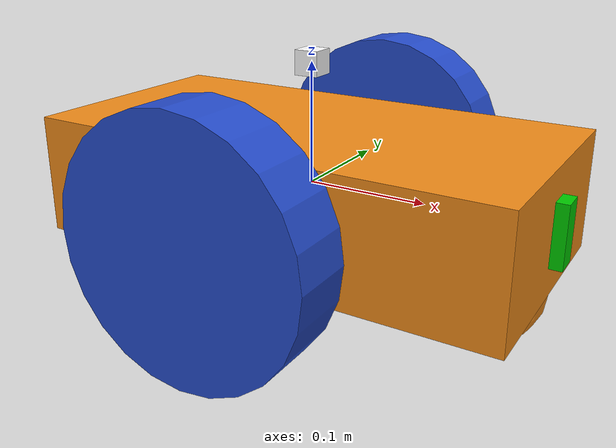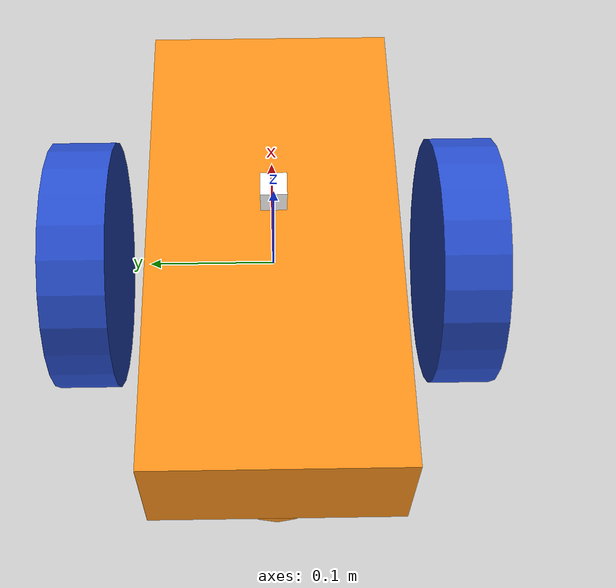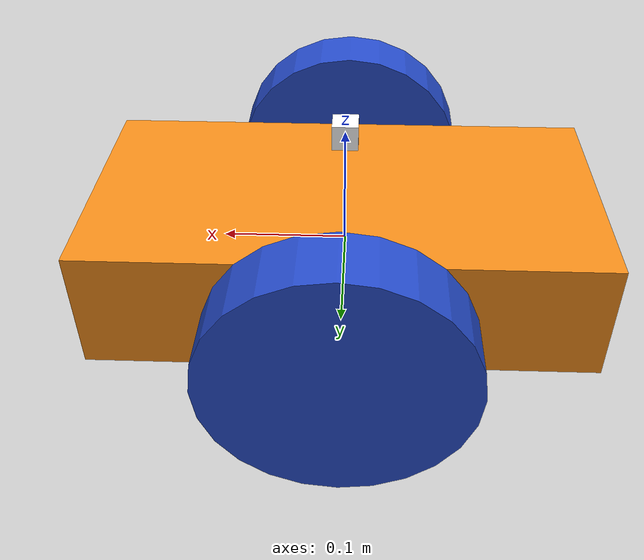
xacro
<?xml version='1.0'?>
<robot name="myrobot" xmlns:xacro="http://www.ros.org/wiki/xacro">

<xacro:property name="cameraSize" value="0.05"/>
<xacro:property name="cameraMass" value="0.1"/>
<xacro:include filename="$(find pbot_des)/urdf/mybot.gazebo" />
<xacro:include filename="$(find pbot_des)/urdf/materials.xacro" />
<xacro:include filename="$(find pbot_des)/urdf/macros.xacro" />

    <link name='chassis'>
        <pose>0 0 0.1 0 0 0</pose>
        <inertial>
            <mass value="15.0"/>
            <origin xyz="0.0 0 0.1" rpy=" 0 0 0"/>
            <inertia ixx="0.1" ixy="0" ixz="0" iyy="0.1" iyz="0" izz="0.1" />
        </inertial>
        <collision name='collision'>
            <geometry>
                <box size=".4 .2 .1"/>
            </geometry>
        </collision>
        <visual name='chassis_visual'>
            <origin xyz="0 0 0" rpy=" 0 0 0"/>
            <geometry>
                <box size=".4 .2 .1"/>
            </geometry>
        </visual>
        <collision name='caster_collision'>
            <origin xyz="-0.15 0 -0.05" rpy=" 0 0 0"/>
            <geometry>
                <sphere radius="0.05"/>
            </geometry>
            <surface>
            <friction>
            <ode>
                <mu>0</mu>
                <mu2>0</mu2>
                <slip1>1.0</slip1>
                <slip2>1.0</slip2>
            </ode>
            </friction>
            </surface>
        </collision>
        <visual name='caster_visual'>
        <origin xyz="-0.15 0 -0.05" rpy=" 0 0 0"/>
            <geometry>
                <sphere radius="0.05"/>
            </geometry>
        </visual>
        <collision name='caster_front_collision'>
        <origin xyz="0.15 0 -0.05" rpy=" 0 0 0"/>
            <geometry>
                <sphere radius="0.05"/>
            </geometry>
            <surface>
            <friction>
            <ode>
                <mu>0</mu>
                <mu2>0</mu2>
                <slip1>1.0</slip1>
                <slip2>1.0</slip2>
            </ode>
            </friction>
            </surface>
        </collision>
        <visual name='caster_front_visual'>
            <origin xyz="0.15 0 -0.05" rpy=" 0 0 0"/>
            <geometry>
                <sphere radius="0.05"/>
            </geometry>
        </visual>
    </link>

    <link name="left_wheel">
        <!--origin xyz="0.1 0.13 0.1" rpy="0 1.5707 1.5707"/-->
        <collision name="collision">
            <origin xyz="0 0 0" rpy="0 1.5707 1.5707"/><geometry>
                <cylinder radius="0.1" length="0.05"/>
            </geometry>
        </collision>
        <visual name="left_wheel_visual">
        <origin xyz="0 0 0" rpy="0 1.5707 1.5707"/>
            <geometry>
                <cylinder radius="0.1" length="0.05"/>
            </geometry>
        </visual>
        <inertial>
            <origin xyz="0 0 0" rpy="0 1.5707 1.5707"/>
            <mass value="5"/>
            <inertia ixx=".1" ixy="0.0" ixz="0.0" iyy=".1" iyz="0.0" izz=".1"/>
        </inertial>
    </link>

    <link name="right_wheel">
        <!--origin xyz="0.1 -0.13 0.1" rpy="0 1.5707 1.5707"/-->
        <collision name="collision">
            <origin xyz="0 0 0" rpy="0 1.5707 1.5707"/>
            <geometry>
            <cylinder radius="0.1" length="0.05"/>
            </geometry>
        </collision>
        <visual name="right_wheel_visual">
            <origin xyz="0 0 0" rpy="0 1.5707 1.5707"/>
            <geometry>
            <cylinder radius="0.1" length="0.05"/>
            </geometry>
        </visual>
        <inertial>
            <origin xyz="0 0 0" rpy="0 1.5707 1.5707"/>
            <mass value="5"/>
            <inertia ixx=".1" ixy="0.0" ixz="0.0" iyy=".1" iyz="0.0" izz=".1"/>
        </inertial>
    </link>

    <joint type="continuous" name="left_wheel_hinge">
        <origin xyz="0 0.15 0" rpy="0 0 0"/>
        <!--origin xyz="0.1 0.13 0" rpy="0 1.5707 1.5707"/--><child link="left_wheel"/>
        <parent link="chassis"/>
        <axis xyz="0 1 0" rpy="0 0 0"/>
        <limit effort="10000" velocity="1000"/>
        <joint_properties damping="1.0" friction="1.0"/>
    </joint>

    <joint type="continuous" name="right_wheel_hinge">
        <origin xyz="0 -0.15 0" rpy="0 0 0"/>
        <!--origin xyz="0.1 -0.13 0" rpy="0 1.5707 1.5707"/-->
        <child link="right_wheel"/>
        <parent link="chassis"/>
        <axis xyz="0 1 0" rpy="0 0 0"/>
        <limit effort="10000" velocity="1000"/>
        <joint_properties damping="1.0" friction="1.0"/>
    </joint>

    <!--IMU-->

    <link name="imu_link">
        <collision>
            <origin xyz="0 0 0" rpy="0 0 0"/>
            <geometry>
                <box size="0.02 0.02 0.05"/>
            </geometry>
        </collision>
        <visual>
            <origin xyz="0 0 0" rpy="0 0 0"/>
            <geometry>
            <box size="0.02 0.02 0.05"/>
            </geometry>
            <material name="green"/>
        </visual>
        <inertial>
                  <mass value="1e-5" />
                  <origin xyz="0 0 0" rpy="0 0 0"/>
                  <inertia ixx="1e-6" ixy="0" ixz="0" iyy="1e-6" iyz="0" izz="1e-6" />
        </inertial>
    </link>

    <joint name="imu_joint" type="fixed">
        <axis xyz="0 1 0" />
        <origin xyz=".2 0 0" rpy="0 0 0"/>
        <parent link="chassis"/>
        <child link="imu_link"/>
    </joint>

    <!--GPS-->

    <link name="gps_link">
        <collision>
            <origin xyz="0 0 0.1" rpy="0 0 0"/>
            <geometry>
                <box size="0.02 0.02 0.02"/>
            </geometry>
        </collision>
        <visual>
            <origin xyz="0 0 0.1" rpy="0 0 0"/>
            <geometry>
            <box size="0.02 0.02 0.02"/>
            </geometry>
            <material name="white"/>
        </visual>
        <inertial>
            <origin xyz="0 0 1" rpy="0 0 0"/>
            <mass value="1"/>
            <inertia ixx="1.0" ixy="0.0" ixz="0.0" iyy="1.0" iyz="0.0" izz="1.0"/>
        </inertial>
    </link>

    <joint name="gps_joint" type="fixed">
        <parent link="chassis"/>
        <child link="gps_link"/>
    </joint>

</robot>

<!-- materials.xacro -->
<robot>
    <material name="black">
        <color rgba="0.0 0.0 0.0 1.0"/>
    </material>
    <material name="blue">
        <color rgba="0.0 0.0 0.8 1.0"/>
    </material><material name="green">
        <color rgba="0.0 0.8 0.0 1.0"/>
    </material>
    <material name="grey">
        <color rgba="0.2 0.2 0.2 1.0"/>
    </material>
    <material name="orange">
        <color rgba="${255/255} ${108/255} ${10/255} 1.0"/>
    </material>
    <material name="brown">
        <color rgba="${222/255} ${207/255} ${195/255} 1.0"/>
    </material>
    <material name="red">
        <color rgba="0.8 0.0 0.0 1.0"/>
    </material>
    <material name="white">
        <color rgba="1.0 1.0 1.0 1.0"/>
    </material>
</robot>
